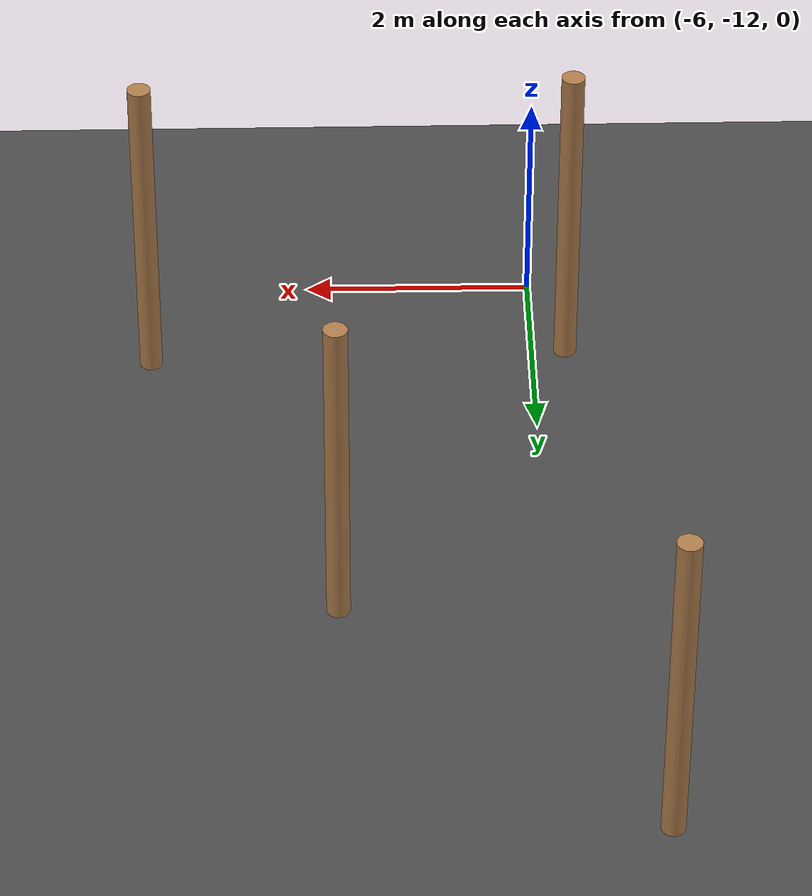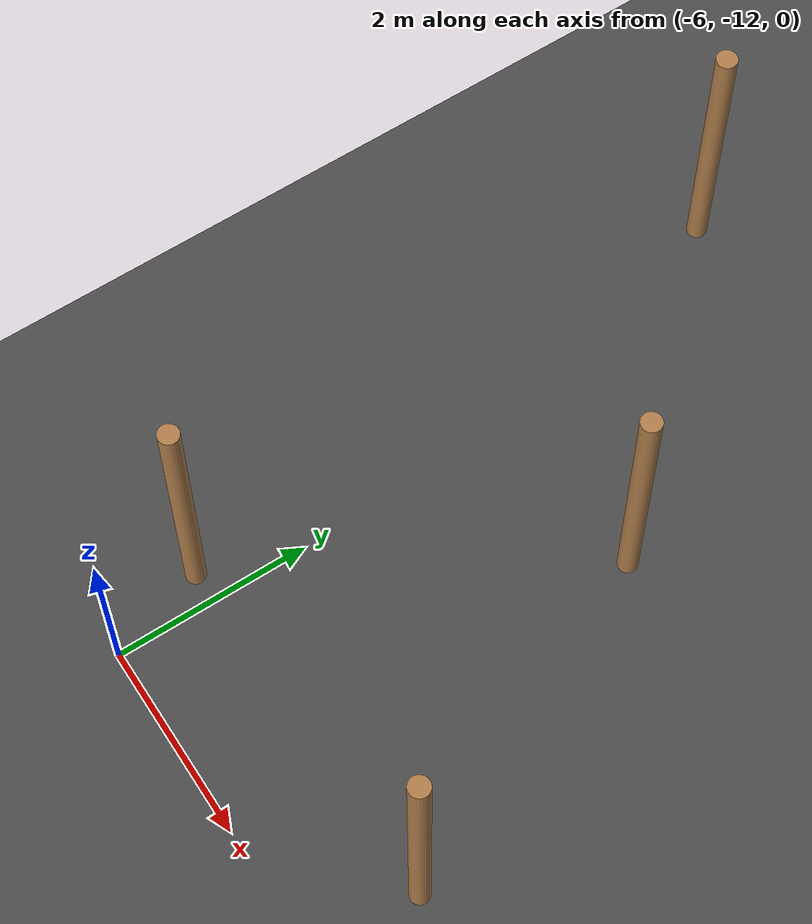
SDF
<sdf version="1.6">
 <world name="default">
  <include><uri>model://ground_plane</uri></include>
  <model name="asphalt_plane">
   <static>1</static>
   <link name="link">
    <collision name="collision"><geometry><box><size>42.4866 44.6464 0.1</size></box></geometry></collision>
    <visual name="visual">
     <cast_shadows>0</cast_shadows>
     <geometry><box><size>42.4866 44.6464 0.1</size></box></geometry>
     <material>
      <script>
       <uri>model://asphalt_plane/materials/scripts</uri>
       <uri>model://asphalt_plane/materials/textures</uri>
       <name>vrc/asphalt</name>
      </script>
     </material>
    </visual>
   </link>
  </model>
  <model name="wooden_cylinder1_clone_7">
   <pose>-6.8278 -4.97085 -0.000107 0 -0 0</pose>
   <link name="wooden_cylinder::link_0">
    <pose>0 0 1.5 0 -0 0</pose>
    <inertial>
     <mass>1</mass>
     <inertia><ixx>0.145833</ixx><ixy>0</ixy><ixz>0</ixz><iyy>0.145833</iyy><iyz>0</iyz><izz>0.125</izz></inertia>
    </inertial>
    <visual name="visual">
     <geometry><cylinder><radius>0.1</radius><length>3</length></cylinder></geometry>
     <material>
      <lighting>1</lighting>
      <script><uri>file://media/materials/scripts/gazebo.material</uri><name>Gazebo/Wood</name></script>
      <ambient>0.3 0.3 0.3 1</ambient>
      <diffuse>0.7 0.7 0.7 1</diffuse>
      <specular>0.01 0.01 0.01 1</specular>
      <emissive>0 0 0 1</emissive>
      <shader type="vertex"><normal_map>__default__</normal_map></shader>
     </material>
    </visual>
    <collision name="collision">
     <geometry><cylinder><radius>0.1</radius><length>3</length></cylinder></geometry>
     <surface>
      <friction>
       <ode><mu>1</mu><mu2>1</mu2><fdir1>0 0 0</fdir1><slip1>0</slip1><slip2>0</slip2></ode>
       <torsional>
        <coefficient>1</coefficient>
        <patch_radius>0</patch_radius>
        <surface_radius>0</surface_radius>
        <use_patch_radius>1</use_patch_radius>
        <ode><slip>0</slip></ode>
       </torsional>
      </friction>
      <bounce><restitution_coefficient>0</restitution_coefficient><threshold>1e+06</threshold></bounce>
      <contact>
       <collide_without_contact>0</collide_without_contact>
       <collide_without_contact_bitmask>1</collide_without_contact_bitmask>
       <collide_bitmask>1</collide_bitmask>
       <ode>
        <soft_cfm>0</soft_cfm>
        <soft_erp>0.2</soft_erp>
        <kp>1e+13</kp>
        <kd>1</kd>
        <max_vel>0.01</max_vel>
        <min_depth>0</min_depth>
       </ode>
       <bullet>
        <split_impulse>1</split_impulse>
        <split_impulse_penetration_threshold>-0.01</split_impulse_penetration_threshold>
        <soft_cfm>0</soft_cfm>
        <soft_erp>0.2</soft_erp>
        <kp>1e+13</kp>
        <kd>1</kd>
       </bullet>
      </contact>
     </surface>
    </collision>
   </link>
   <static>1</static>
  </model>
  <model name="wooden_cylinder1_clone_11">
   <pose>-4.23438 -7.57289 0.000132 0 -0 0</pose>
   <link name="wooden_cylinder::link_0">
    <pose>0 0 1.5 0 -0 0</pose>
    <inertial>
     <mass>1</mass>
     <inertia><ixx>0.145833</ixx><ixy>0</ixy><ixz>0</ixz><iyy>0.145833</iyy><iyz>0</iyz><izz>0.125</izz></inertia>
    </inertial>
    <visual name="visual">
     <geometry><cylinder><radius>0.1</radius><length>3</length></cylinder></geometry>
     <material>
      <lighting>1</lighting>
      <script><uri>file://media/materials/scripts/gazebo.material</uri><name>Gazebo/Wood</name></script>
      <ambient>0.3 0.3 0.3 1</ambient>
      <diffuse>0.7 0.7 0.7 1</diffuse>
      <specular>0.01 0.01 0.01 1</specular>
      <emissive>0 0 0 1</emissive>
      <shader type="vertex"><normal_map>__default__</normal_map></shader>
     </material>
    </visual>
    <collision name="collision">
     <geometry><cylinder><radius>0.1</radius><length>3</length></cylinder></geometry>
     <surface>
      <friction>
       <ode><mu>1</mu><mu2>1</mu2><fdir1>0 0 0</fdir1><slip1>0</slip1><slip2>0</slip2></ode>
       <torsional>
        <coefficient>1</coefficient>
        <patch_radius>0</patch_radius>
        <surface_radius>0</surface_radius>
        <use_patch_radius>1</use_patch_radius>
        <ode><slip>0</slip></ode>
       </torsional>
      </friction>
      <bounce><restitution_coefficient>0</restitution_coefficient><threshold>1e+06</threshold></bounce>
      <contact>
       <collide_without_contact>0</collide_without_contact>
       <collide_without_contact_bitmask>1</collide_without_contact_bitmask>
       <collide_bitmask>1</collide_bitmask>
       <ode>
        <soft_cfm>0</soft_cfm>
        <soft_erp>0.2</soft_erp>
        <kp>1e+13</kp>
        <kd>1</kd>
        <max_vel>0.01</max_vel>
        <min_depth>0</min_depth>
       </ode>
       <bullet>
        <split_impulse>1</split_impulse>
        <split_impulse_penetration_threshold>-0.01</split_impulse_penetration_threshold>
        <soft_cfm>0</soft_cfm>
        <soft_erp>0.2</soft_erp>
        <kp>1e+13</kp>
        <kd>1</kd>
       </bullet>
      </contact>
     </surface>
    </collision>
   </link>
   <static>1</static>
  </model>
  <model name="wooden_cylinder1_clone_15">
   <pose>-6.29197 -11.0016 -2.7e-05 0 -0 0</pose>
   <link name="wooden_cylinder::link_0">
    <pose>0 0 1.5 0 -0 0</pose>
    <inertial>
     <mass>1</mass>
     <inertia><ixx>0.145833</ixx><ixy>0</ixy><ixz>0</ixz><iyy>0.145833</iyy><iyz>0</iyz><izz>0.125</izz></inertia>
    </inertial>
    <visual name="visual">
     <geometry><cylinder><radius>0.1</radius><length>3</length></cylinder></geometry>
     <material>
      <lighting>1</lighting>
      <script><uri>file://media/materials/scripts/gazebo.material</uri><name>Gazebo/Wood</name></script>
      <ambient>0.3 0.3 0.3 1</ambient>
      <diffuse>0.7 0.7 0.7 1</diffuse>
      <specular>0.01 0.01 0.01 1</specular>
      <emissive>0 0 0 1</emissive>
      <shader type="vertex"><normal_map>__default__</normal_map></shader>
     </material>
    </visual>
    <collision name="collision">
     <geometry><cylinder><radius>0.1</radius><length>3</length></cylinder></geometry>
     <surface>
      <friction>
       <ode><mu>1</mu><mu2>1</mu2><fdir1>0 0 0</fdir1><slip1>0</slip1><slip2>0</slip2></ode>
       <torsional>
        <coefficient>1</coefficient>
        <patch_radius>0</patch_radius>
        <surface_radius>0</surface_radius>
        <use_patch_radius>1</use_patch_radius>
        <ode><slip>0</slip></ode>
       </torsional>
      </friction>
      <bounce><restitution_coefficient>0</restitution_coefficient><threshold>1e+06</threshold></bounce>
      <contact>
       <collide_without_contact>0</collide_without_contact>
       <collide_without_contact_bitmask>1</collide_without_contact_bitmask>
       <collide_bitmask>1</collide_bitmask>
       <ode>
        <soft_cfm>0</soft_cfm>
        <soft_erp>0.2</soft_erp>
        <kp>1e+13</kp>
        <kd>1</kd>
        <max_vel>0.01</max_vel>
        <min_depth>0</min_depth>
       </ode>
       <bullet>
        <split_impulse>1</split_impulse>
        <split_impulse_penetration_threshold>-0.01</split_impulse_penetration_threshold>
        <soft_cfm>0</soft_cfm>
        <soft_erp>0.2</soft_erp>
        <kp>1e+13</kp>
        <kd>1</kd>
       </bullet>
      </contact>
     </surface>
    </collision>
   </link>
   <static>1</static>
  </model>
  <model name="wooden_cylinder1_clone_16">
   <pose>-2.60388 -10.8956 6.3e-05 0 -0 0</pose>
   <link name="wooden_cylinder::link_0">
    <pose>0 0 1.5 0 -0 0</pose>
    <inertial>
     <mass>1</mass>
     <inertia><ixx>0.145833</ixx><ixy>0</ixy><ixz>0</ixz><iyy>0.145833</iyy><iyz>0</iyz><izz>0.125</izz></inertia>
    </inertial>
    <visual name="visual">
     <geometry><cylinder><radius>0.1</radius><length>3</length></cylinder></geometry>
     <material>
      <lighting>1</lighting>
      <script><uri>file://media/materials/scripts/gazebo.material</uri><name>Gazebo/Wood</name></script>
      <ambient>0.3 0.3 0.3 1</ambient>
      <diffuse>0.7 0.7 0.7 1</diffuse>
      <specular>0.01 0.01 0.01 1</specular>
      <emissive>0 0 0 1</emissive>
      <shader type="vertex"><normal_map>__default__</normal_map></shader>
     </material>
    </visual>
    <collision name="collision">
     <geometry><cylinder><radius>0.1</radius><length>3</length></cylinder></geometry>
     <surface>
      <friction>
       <ode><mu>1</mu><mu2>1</mu2><fdir1>0 0 0</fdir1><slip1>0</slip1><slip2>0</slip2></ode>
       <torsional>
        <coefficient>1</coefficient>
        <patch_radius>0</patch_radius>
        <surface_radius>0</surface_radius>
        <use_patch_radius>1</use_patch_radius>
        <ode><slip>0</slip></ode>
       </torsional>
      </friction>
      <bounce><restitution_coefficient>0</restitution_coefficient><threshold>1e+06</threshold></bounce>
      <contact>
       <collide_without_contact>0</collide_without_contact>
       <collide_without_contact_bitmask>1</collide_without_contact_bitmask>
       <collide_bitmask>1</collide_bitmask>
       <ode>
        <soft_cfm>0</soft_cfm>
        <soft_erp>0.2</soft_erp>
        <kp>1e+13</kp>
        <kd>1</kd>
        <max_vel>0.01</max_vel>
        <min_depth>0</min_depth>
       </ode>
       <bullet>
        <split_impulse>1</split_impulse>
        <split_impulse_penetration_threshold>-0.01</split_impulse_penetration_threshold>
        <soft_cfm>0</soft_cfm>
        <soft_erp>0.2</soft_erp>
        <kp>1e+13</kp>
        <kd>1</kd>
       </bullet>
      </contact>
     </surface>
    </collision>
   </link>
   <static>1</static>
  </model>
 </world>
</sdf>
